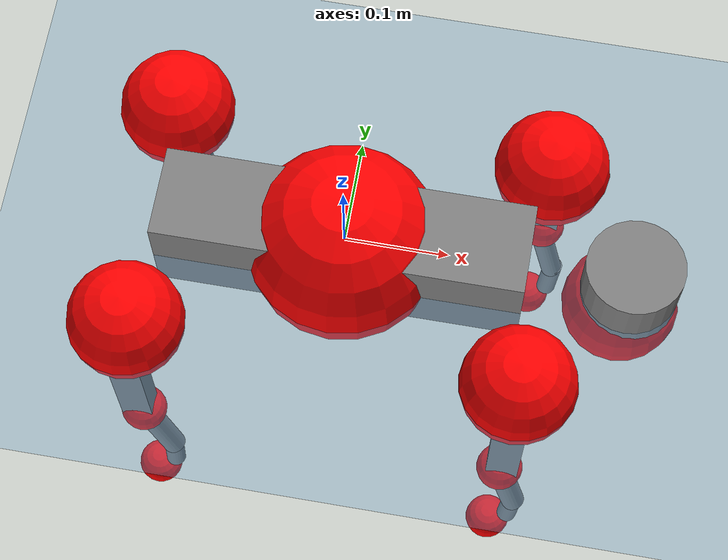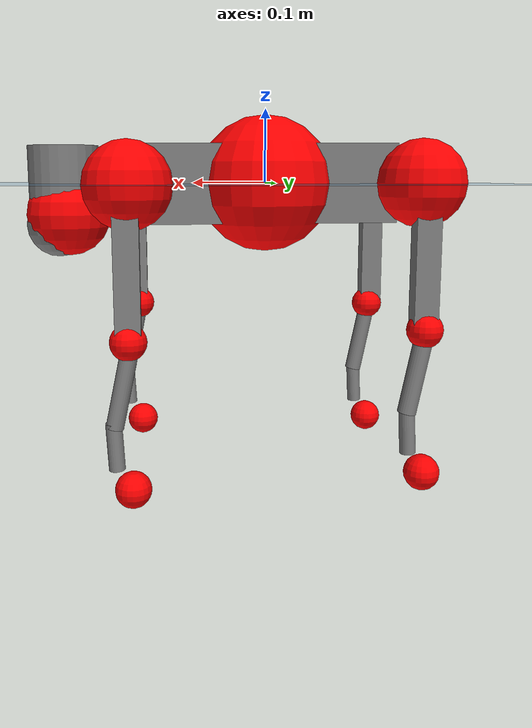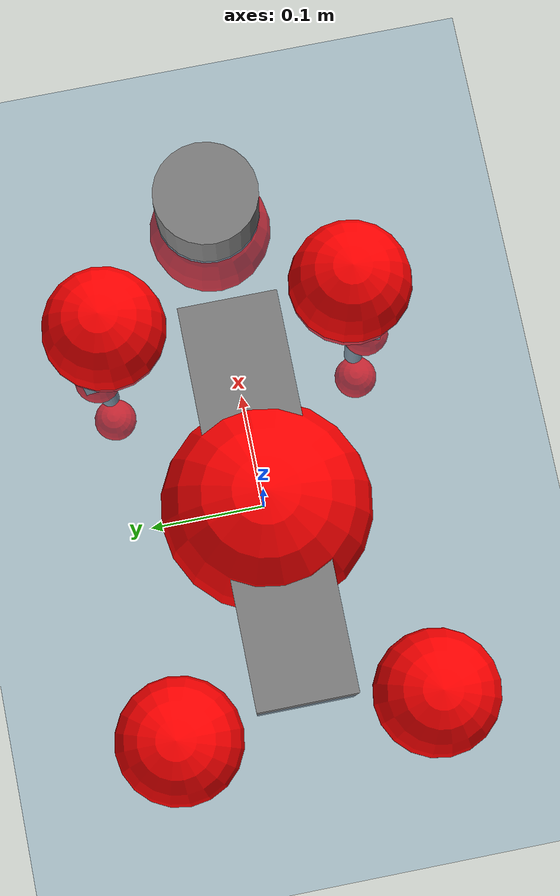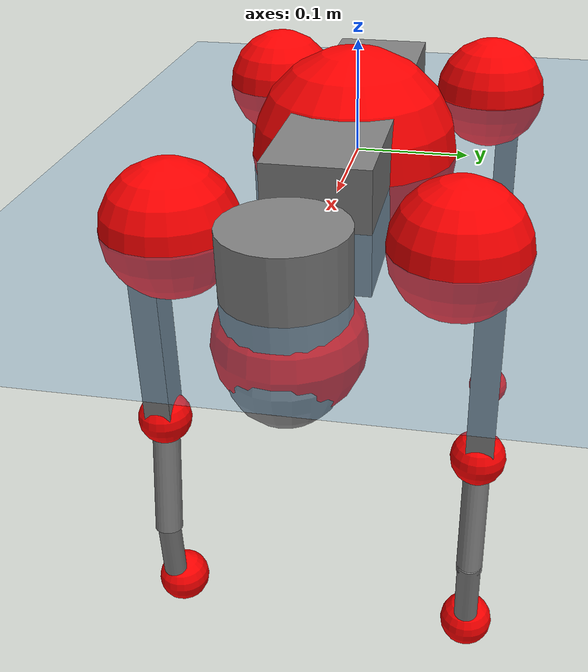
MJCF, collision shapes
<mujoco model="go2">
  <compiler angle="radian" assetdir="assets" balanceinertia="true" inertiafromgeom="false"/>

  <option timestep="0.005" density="1.2" viscosity="2e-05"/>

  <size nkey="1"/>

  <visual>
    <quality shadowsize="8192"/>
    <map shadowclip="0.5"/>
  </visual>

  <default>
    <default class="/">
      <geom contype="0" conaffinity="0" group="1" solref="-1000 -80"/>
      <site size="0.01 0.005 0.005" group="5"/>
      <general forcelimited="true" biastype="affine" gainprm="20" biasprm="0 -20 -0.5"/>
      <default class="go2">
        <joint armature="0.01" damping="0.01" frictionloss="0.2"/>
        <geom condim="1" margin="0.001"/>
        <default class="visual">
          <geom type="mesh" group="2"/>
        </default>
        <default class="collision">
          <geom group="3"/>
          <default class="foot">
            <geom size="0.022 0 0" condim="6" priority="1" friction="0.8 0.02 0.01" solimp="0.015 1 0.022"/>
          </default>
        </default>
        <default class="reward_collision_sphere">
          <geom group="5" rgba="1 0 0 1"/>
        </default>
      </default>
    </default>
  </default>

  <asset>
    <texture type="skybox" colorspace="auto" name="//unnamed_texture_0" builtin="gradient" rgb1="0.95 0.95 0.95" rgb2="0.95 0.95 0.95" width="100" height="600"/>
    <texture type="2d" colorspace="auto" name="texplane" builtin="checker" rgb1="0.345 0.575 0.748" rgb2="0.345 0.575 0.748" markrgb="1 1 1" width="512" height="512"/>
    <material name="MatPlane" class="/" texture="texplane" texuniform="true" texrepeat="2 2" specular="0.9"/>
    <material name="metal" class="/" rgba="0.9 0.95 0.95 1"/>
    <material name="black" class="/" rgba="0 0 0 1"/>
    <material name="white" class="/"/>
    <material name="gray" class="/" rgba="0.671705 0.692426 0.77427 1"/>
    <mesh name="base_0" class="/" file="base_0.obj"/>
    <mesh name="base_1" class="/" file="base_1.obj"/>
    <mesh name="base_2" class="/" file="base_2.obj"/>
    <mesh name="base_3" class="/" file="base_3.obj"/>
    <mesh name="base_4" class="/" file="base_4.obj"/>
    <mesh name="hip_0" class="/" file="hip_0.obj"/>
    <mesh name="hip_1" class="/" file="hip_1.obj"/>
    <mesh name="thigh_0" class="/" file="thigh_0.obj"/>
    <mesh name="thigh_1" class="/" file="thigh_1.obj"/>
    <mesh name="thigh_mirror_0" class="/" file="thigh_mirror_0.obj"/>
    <mesh name="thigh_mirror_1" class="/" file="thigh_mirror_1.obj"/>
    <mesh name="calf_0" class="/" file="calf_0.obj"/>
    <mesh name="calf_1" class="/" file="calf_1.obj"/>
    <mesh name="calf_mirror_0" class="/" file="calf_mirror_0.obj"/>
    <mesh name="calf_mirror_1" class="/" file="calf_mirror_1.obj"/>
    <mesh name="foot" class="/" file="foot.obj"/>
  </asset>

  <worldbody>
    <geom name="floor" class="/" size="100 100 0.125" type="plane" group="0" material="MatPlane"/>
    <light name="toplight_shadow" class="/" pos="0 0 5" dir="0.0990148 0.0990148 -0.990148" type="directional" ambient="0.04 0.04 0.04" diffuse="0.55 0.55 0.55" specular="0.12 0.12 0.12"/>
    <light name="toplight_fill" class="/" pos="0 0 5" dir="0.0990148 0.0990148 -0.990148" type="directional" castshadow="false" ambient="0.04 0.04 0.04" diffuse="0.3 0.3 0.3" specular="0.08 0.08 0.08"/>
    <body name="trunk" childclass="go2" pos="-0.000309613 -0.00281909 -0.000871543" quat="0.999999 -5.65043e-05 0.00135826 0.000380551">
      <inertial pos="0.017644 -0.00159431 -0.00206176" quat="0.00578742 0.712673 0.00926234 0.701411" mass="5.76025" diaginertia="0.0846223 0.0753863 0.0142583"/>
      <joint name="//unnamed_joint_0" type="free" armature="0" damping="0" frictionloss="0"/>
      <geom name="//unnamed_geom_1" class="visual" material="black" mesh="base_0"/>
      <geom name="//unnamed_geom_2" class="visual" material="black" mesh="base_1"/>
      <geom name="//unnamed_geom_3" class="visual" material="black" mesh="base_2"/>
      <geom name="//unnamed_geom_4" class="visual" material="white" mesh="base_3"/>
      <geom name="//unnamed_geom_5" class="visual" material="gray" mesh="base_4"/>
      <geom name="trunk_1" class="collision" size="0.176299 0.0438171 0.053424" type="box"/>
      <geom name="trunk_2" class="collision" size="0.0468632 0.0421769" pos="0.274268 0 0.00895997" type="cylinder"/>
      <geom name="trunk_3" class="collision" size="0.0440514" pos="0.281966 0 -0.0537598"/>
      <geom name="//unnamed_geom_9" class="reward_collision_sphere" size="0.0937264"/>
      <geom name="//unnamed_geom_10" class="reward_collision_sphere" size="0.0562358" pos="0.269456 0 -0.0403199"/>
      <site name="imu" pos="-0.0193143 -0.00389656 0.0340851" size="0.00937264"/>
      <camera name="track" pos="0 -1.9069 0" quat="0.707107 0.707107 0 0" mode="trackcom"/>
      <camera name="ego_camera" pos="0.300251 0 0.0403199" quat="-0.5 -0.5 0.5 0.5"/>
      <body name="FL_hip" pos="0.18501 0.0446834 -0.000415173" quat="1 0.0001175 -0.000157194 -0.000167453">
        <inertial pos="-0.00560689 -0.000624982 -0.00123091" quat="0.492876 0.500408 0.506472 0.500152" mass="0.555975" diaginertia="0.000735133 0.000455579 0.000278343"/>
        <joint name="FL_hip_joint" pos="0 0 0" axis="0.999897 0.0130953 -0.00594843" stiffness="0.00999685" range="-1.09906 1.06161" armature="0.00961051" damping="0.00109561" frictionloss="0.1827"/>
        <geom name="//unnamed_geom_11" class="visual" material="metal" mesh="hip_0"/>
        <geom name="//unnamed_geom_12" class="visual" material="gray" mesh="hip_1"/>
        <geom name="//unnamed_geom_13" class="collision" size="0.0431141 0.0187453" pos="0 0.0762761 0" quat="0.707107 0.707107 0 0" type="cylinder"/>
        <geom name="//unnamed_geom_14" class="reward_collision_sphere" size="0.0562358" pos="0 0.0667416 0"/>
        <body name="FL_thigh" pos="0.00203445 0.0933304 -0.000363149" quat="1 -0.000572393 -0.000102499 -0.000496761">
          <inertial pos="-0.00325078 -0.0199078 -0.0281286" quat="0.830086 0.0863425 -0.0118094 0.550784" mass="0.983968" diaginertia="0.00479479 0.00473181 0.000509577"/>
          <joint name="FL_thigh_joint" pos="0 0 0" axis="0.0160704 0.999871 0.000767718" stiffness="0.0142738" range="-1.62657 3.4478" armature="0.0100514" damping="0.00150569" frictionloss="0.163243"/>
          <geom name="//unnamed_geom_15" class="visual" material="metal" mesh="thigh_0"/>
          <geom name="//unnamed_geom_16" class="visual" material="gray" mesh="thigh_1"/>
          <geom name="//unnamed_geom_17" class="collision" size="0.0998186 0.0114815 0.0159335" pos="0 0 -0.0954237" quat="0.707107 0 0.707107 0" type="box"/>
          <body name="FL_calf" pos="0.000291203 -0.00138461 -0.190464" quat="1 0.000251928 0.000371569 0.000113342">
            <inertial pos="0.00369188 -0.00324279 -0.128956" quat="0.706338 0.00293732 -0.00687816 0.707835" mass="0.194708" diaginertia="0.00118282 0.00114262 3.00179e-05"/>
            <joint name="FL_calf_joint" pos="0 0 0" axis="0.000945233 0.999952 0.00977882" stiffness="0.0140818" range="-2.6965 -0.783706" armature="0.00807454" damping="0" frictionloss="0.197529"/>
            <geom name="//unnamed_geom_18" class="visual" material="gray" mesh="calf_0"/>
            <geom name="//unnamed_geom_19" class="visual" material="black" mesh="calf_1"/>
            <geom name="FL_calf0" class="collision" size="0.0112472 0.0562358" pos="0.00769874 0 -0.0537598" quat="0.994493 0 -0.104807 0" type="cylinder"/>
            <geom name="//unnamed_geom_21" class="collision" size="0.0103099 0.0304611" pos="0.0192469 0 -0.132608" quat="0.999688 0 0.0249974 0" type="cylinder"/>
            <geom name="//unnamed_geom_22" class="visual" pos="0 0 -0.190847" quat="1 0 0 0" material="black" mesh="foot"/>
            <geom name="FL_foot" class="foot" size="0.0157925" pos="-0.00192469 0 -0.190847"/>
            <geom name="//unnamed_geom_24" class="reward_collision_sphere" size="0.0234316"/>
            <geom name="//unnamed_geom_25" class="reward_collision_sphere" size="0.0234316" pos="-0.00192469 0 -0.190847"/>
            <site name="FL_foot" class="foot" pos="-0.00192469 0 -0.190847" size="0.00937264"/>
          </body>
        </body>
      </body>
      <body name="FR_hip" pos="0.184681 -0.0463001 -0.00144201" quat="1 0.000524973 6.96186e-05 -9.15775e-05">
        <inertial pos="-0.00391271 -0.000244832 -0.00136578" quat="0.498818 0.514346 0.493361 0.493178" mass="0.548742" diaginertia="0.000705325 0.00047009 0.000282138"/>
        <joint name="FR_hip_joint" pos="0 0 0" axis="0.999913 0.0111499 -0.00698878" range="-1.06914 1.10114" armature="0.0084068" damping="0.00628408" frictionloss="0.193096"/>
        <geom name="//unnamed_geom_26" class="visual" pos="0 5.00516e-10 2.14682e-08" quat="4.63268e-05 1 0 0" material="metal" mesh="hip_0"/>
        <geom name="//unnamed_geom_27" class="visual" pos="0 8.11396e-10 -5.3099e-08" quat="4.63268e-05 1 0 0" material="gray" mesh="hip_1"/>
        <geom name="//unnamed_geom_28" class="collision" size="0.0431141 0.0187453" pos="0 -0.0762761 0" quat="0.707107 0.707107 0 0" type="cylinder"/>
        <geom name="//unnamed_geom_29" class="reward_collision_sphere" size="0.0562358" pos="0 -0.0667416 0"/>
        <body name="FR_thigh" pos="-0.0002799 -0.0907782 0.00142687" quat="1 -0.000213339 -7.56835e-05 -0.000101441">
          <inertial pos="-0.000930713 0.0186591 -0.0272418" quat="0.550629 -0.0192762 0.0912314 0.829526" mass="0.958503" diaginertia="0.0047481 0.00460711 0.000507988"/>
          <joint name="FR_thigh_joint" pos="0 0 0" axis="-0.000297161 -0.999999 -0.00113209" stiffness="0.0045895" range="-3.48441 1.5896" armature="0.00837751" damping="0.0237972" frictionloss="0.161898"/>
          <geom name="//unnamed_geom_30" class="visual" material="metal" mesh="thigh_mirror_0"/>
          <geom name="//unnamed_geom_31" class="visual" material="gray" mesh="thigh_mirror_1"/>
          <geom name="//unnamed_geom_32" class="collision" size="0.0998186 0.0114815 0.0159335" pos="0 0 -0.0954237" quat="0.707107 0 0.707107 0" type="box"/>
          <body name="FR_calf" pos="-0.00230243 -0.000164747 -0.187615" quat="1 8.25705e-05 -1.3122e-06 3.30761e-05">
            <inertial pos="0.00333444 0.0034714 -0.126374" quat="0.706541 0.00364649 0.0015666 0.707661" mass="0.202307" diaginertia="0.0012275 0.0012161 3.01939e-05"/>
            <joint name="FR_calf_joint" pos="0 0 0" axis="0.00401552 -0.999984 0.00389423" range="0.853359 2.73016" armature="0.00974558" damping="0" frictionloss="0.173985"/>
            <geom name="//unnamed_geom_33" class="visual" material="gray" mesh="calf_mirror_0"/>
            <geom name="//unnamed_geom_34" class="visual" material="black" mesh="calf_mirror_1"/>
            <geom name="FR_calf0" class="collision" size="0.0121844 0.0562358" pos="0.00962343 0 -0.0537598" quat="0.995004 0 -0.0998334 0" type="cylinder"/>
            <geom name="//unnamed_geom_36" class="collision" size="0.0103099 0.0304611" pos="0.0192469 0 -0.132608" quat="0.999688 0 0.0249974 0" type="cylinder"/>
            <geom name="//unnamed_geom_37" class="visual" pos="0 0 -0.190847" quat="1 0 0 0" material="black" mesh="foot"/>
            <geom name="FR_foot" class="foot" size="0.020102" pos="-0.00192469 0 -0.190847"/>
            <geom name="//unnamed_geom_39" class="reward_collision_sphere" size="0.0234316"/>
            <geom name="//unnamed_geom_40" class="reward_collision_sphere" size="0.0234316" pos="-0.00192469 0 -0.190847"/>
            <site name="FR_foot" class="foot" pos="-0.00192469 0 -0.190847" size="0.00937264"/>
          </body>
        </body>
      </body>
      <body name="RL_hip" pos="-0.185351 0.0465467 0.000986038" quat="1 -1.24275e-07 -0.000397649 -0.000209572">
        <inertial pos="0.00491101 0.002589 0.00287021" quat="0.505428 0.498231 0.497042 0.499257" mass="0.538082" diaginertia="0.000718565 0.00044685 0.000280414"/>
        <joint name="RL_hip_joint" pos="0 0 0" axis="-0.99992 0.00895318 0.00895666" stiffness="0.0098918" range="-0.998307 1.01411" armature="0.00944403" damping="0.0116585" frictionloss="0.213546"/>
        <geom name="//unnamed_geom_41" class="visual" pos="-5.77975e-10 0 -1.13296e-07" quat="4.63268e-05 0 1 0" material="metal" mesh="hip_0"/>
        <geom name="//unnamed_geom_42" class="visual" pos="-9.36967e-10 0 -1.00478e-07" quat="4.63268e-05 0 1 0" material="gray" mesh="hip_1"/>
        <geom name="//unnamed_geom_43" class="collision" size="0.0431141 0.0187453" pos="0 0.0762761 0" quat="0.707107 0.707107 0 0" type="cylinder"/>
        <geom name="//unnamed_geom_44" class="reward_collision_sphere" size="0.0562358" pos="0 0.0667416 0"/>
        <body name="RL_thigh" pos="-0.000446975 0.0882935 0.00269242" quat="0.999999 -9.84869e-05 0.00095136 -0.00052561">
          <inertial pos="-0.00297042 -0.0202076 -0.0277778" quat="0.822032 0.086432 -0.0161052 0.562613" mass="0.931461" diaginertia="0.00477028 0.0047677 0.000524237"/>
          <joint name="RL_thigh_joint" pos="0 0 0" axis="0.00311225 0.999987 -0.00409263" stiffness="0.00200523" range="-0.502552 4.54743" armature="0.010678" damping="0.0234245" frictionloss="0.163405"/>
          <geom name="//unnamed_geom_45" class="visual" material="metal" mesh="thigh_0"/>
          <geom name="//unnamed_geom_46" class="visual" material="gray" mesh="thigh_1"/>
          <geom name="//unnamed_geom_47" class="collision" size="0.0998186 0.0114815 0.0159335" pos="0 0 -0.0954237" quat="0.707107 0 0.707107 0" type="box"/>
          <body name="RL_calf" pos="-0.00225284 2.94257e-05 -0.188699" quat="0.999999 0.00125938 -0.000159607 -0.000381279">
            <inertial pos="0.00589599 0.00208211 -0.125613" quat="0.711141 -0.00205278 -0.0069718 0.703012" mass="0.194892" diaginertia="0.00117553 0.00110235 2.93554e-05"/>
            <joint name="RL_calf_joint" pos="0 0 0" axis="-0.00670681 0.999971 0.00371284" stiffness="0.00893303" range="-2.69041 -0.824539" armature="0.0100208" damping="0.0140534" frictionloss="0.161484"/>
            <geom name="//unnamed_geom_48" class="visual" material="gray" mesh="calf_0"/>
            <geom name="//unnamed_geom_49" class="visual" material="black" mesh="calf_1"/>
            <geom name="RL_calf0" class="collision" size="0.0121844 0.0562358" pos="0.00962343 0 -0.0537598" quat="0.995004 0 -0.0998334 0" type="cylinder"/>
            <geom name="//unnamed_geom_51" class="collision" size="0.0103099 0.0304611" pos="0.0192469 0 -0.132608" quat="0.999688 0 0.0249974 0" type="cylinder"/>
            <geom name="//unnamed_geom_52" class="visual" pos="0 0 -0.190847" quat="1 0 0 0" material="black" mesh="foot"/>
            <geom name="RL_foot" class="foot" size="0.0173988" pos="-0.00192469 0 -0.190847"/>
            <geom name="//unnamed_geom_54" class="reward_collision_sphere" size="0.0234316"/>
            <geom name="//unnamed_geom_55" class="reward_collision_sphere" size="0.0234316" pos="-0.00192469 0 -0.190847"/>
            <site name="RL_foot" class="foot" pos="-0.00192469 0 -0.190847" size="0.00937264"/>
          </body>
        </body>
      </body>
      <body name="RR_hip" pos="-0.187817 -0.0457698 -0.000912109" quat="1 0.00048643 1.06743e-05 0.000129334">
        <inertial pos="0.00427026 -0.00253645 0.000853259" quat="0.498303 0.49685 0.497284 0.507487" mass="0.544091" diaginertia="0.000710164 0.000460796 0.000272568"/>
        <joint name="RR_hip_joint" pos="0 0 0" axis="-0.999995 -0.00304456 -0.00111974" stiffness="0.00983964" range="-1.03777 1.10372" armature="0.0104097" damping="0.00588341" frictionloss="0.212957"/>
        <geom name="//unnamed_geom_56" class="visual" pos="5.77667e-10 5.00516e-10 -1.34765e-07" quat="2.14617e-09 4.63268e-05 4.63268e-05 -1" material="metal" mesh="hip_0"/>
        <geom name="//unnamed_geom_57" class="visual" pos="9.37728e-10 8.11396e-10 -4.73789e-08" quat="2.14617e-09 4.63268e-05 4.63268e-05 -1" material="gray" mesh="hip_1"/>
        <geom name="//unnamed_geom_58" class="collision" size="0.0431141 0.0187453" pos="0 -0.0762761 0" quat="0.707107 0.707107 0 0" type="cylinder"/>
        <geom name="//unnamed_geom_59" class="reward_collision_sphere" size="0.0562358" pos="0 -0.0667416 0"/>
        <body name="RR_thigh" pos="-0.00257915 -0.0888678 -0.00332314" quat="1 2.29386e-06 -0.000121222 -0.000684472">
          <inertial pos="-0.00311043 0.0185748 -0.029096" quat="0.552521 -0.0239399 0.0837777 0.828932" mass="0.95745" diaginertia="0.00497412 0.00456281 0.000489568"/>
          <joint name="RR_thigh_joint" pos="0 0 0" axis="-0.00101663 -0.999986 0.00526771" stiffness="0.0107107" range="-4.55203 0.55044" armature="0.00858112" damping="0.0240531" frictionloss="0.196189"/>
          <geom name="//unnamed_geom_60" class="visual" material="metal" mesh="thigh_mirror_0"/>
          <geom name="//unnamed_geom_61" class="visual" material="gray" mesh="thigh_mirror_1"/>
          <geom name="//unnamed_geom_62" class="collision" size="0.0998186 0.0114815 0.0159335" pos="0 0 -0.0954237" quat="0.707107 0 0.707107 0" type="box"/>
          <body name="RR_calf" pos="0.00360372 -0.000215531 -0.190677" quat="1 0.000434043 -2.99817e-05 7.77277e-05">
            <inertial pos="0.00334071 -0.000454127 -0.12676" quat="0.704107 -0.00327496 0.00099623 0.710086" mass="0.205014" diaginertia="0.00123521 0.00118189 3.09852e-05"/>
            <joint name="RR_calf_joint" pos="0 0 0" axis="-0.00490107 -0.999955 -0.00807299" range="0.883051 2.77003" armature="0.0097892" damping="0.0151243" frictionloss="0.211208"/>
            <geom name="//unnamed_geom_63" class="visual" material="gray" mesh="calf_mirror_0"/>
            <geom name="//unnamed_geom_64" class="visual" material="black" mesh="calf_mirror_1"/>
            <geom name="RR_calf0" class="collision" size="0.0121844 0.0562358" pos="0.00962343 0 -0.0537598" quat="0.995004 0 -0.0998334 0" type="cylinder"/>
            <geom name="//unnamed_geom_66" class="collision" size="0.0103099 0.0304611" pos="0.0192469 0 -0.132608" quat="0.999688 0 0.0249974 0" type="cylinder"/>
            <geom name="//unnamed_geom_67" class="visual" pos="0 0 -0.190847" quat="1 0 0 0" material="black" mesh="foot"/>
            <geom name="RR_foot" class="foot" size="0.0218218" pos="-0.00192469 0 -0.190847"/>
            <geom name="//unnamed_geom_69" class="reward_collision_sphere" size="0.0234316"/>
            <geom name="//unnamed_geom_70" class="reward_collision_sphere" size="0.0234316" pos="-0.00192469 0 -0.190847"/>
            <site name="RR_foot" class="foot" pos="-0.00192469 0 -0.190847" size="0.00937264"/>
          </body>
        </body>
      </body>
    </body>
  </worldbody>

  <contact>
    <pair class="/" geom1="floor" geom2="FL_foot" name="//unnamed_contact_0"/>
    <pair class="/" geom1="floor" geom2="FR_foot" name="//unnamed_contact_1"/>
    <pair class="/" geom1="floor" geom2="RL_foot" name="//unnamed_contact_2"/>
    <pair class="/" geom1="floor" geom2="RR_foot" name="//unnamed_contact_3"/>
  </contact>

  <actuator>
    <general name="FL_hip" class="/" joint="FL_hip_joint" forcerange="-23.9798 23.9798" gainprm="18.7004" biasprm="0 -18.7004 -0.461435"/>
    <general name="FL_thigh" class="/" joint="FL_thigh_joint" forcerange="-21.7189 21.7189" gainprm="18.7004" biasprm="0 -18.7004 -0.461435"/>
    <general name="FL_calf" class="/" joint="FL_calf_joint" forcerange="-41.3727 41.3727" gainprm="18.7004" biasprm="0 -18.7004 -0.461435"/>
    <general name="FR_hip" class="/" joint="FR_hip_joint" forcerange="-20.1986 20.1986" gainprm="18.7004" biasprm="0 -18.7004 -0.461435"/>
    <general name="FR_thigh" class="/" joint="FR_thigh_joint" forcerange="-22.512 22.512" gainprm="18.7004" biasprm="0 -18.7004 -0.461435"/>
    <general name="FR_calf" class="/" joint="FR_calf_joint" forcerange="-37.7864 37.7864" gainprm="18.7004" biasprm="0 -18.7004 -0.461435"/>
    <general name="RL_hip" class="/" joint="RL_hip_joint" forcerange="-21.3047 21.3047" gainprm="18.7004" biasprm="0 -18.7004 -0.461435"/>
    <general name="RL_thigh" class="/" joint="RL_thigh_joint" forcerange="-22.2281 22.2281" gainprm="18.7004" biasprm="0 -18.7004 -0.461435"/>
    <general name="RL_calf" class="/" joint="RL_calf_joint" forcerange="-43.9852 43.9852" gainprm="18.7004" biasprm="0 -18.7004 -0.461435"/>
    <general name="RR_hip" class="/" joint="RR_hip_joint" forcerange="-20.3407 20.3407" gainprm="18.7004" biasprm="0 -18.7004 -0.461435"/>
    <general name="RR_thigh" class="/" joint="RR_thigh_joint" forcerange="-23.3979 23.3979" gainprm="18.7004" biasprm="0 -18.7004 -0.461435"/>
    <general name="RR_calf" class="/" joint="RR_calf_joint" forcerange="-46.1343 46.1343" gainprm="18.7004" biasprm="0 -18.7004 -0.461435"/>
  </actuator>

  <sensor>
    <gyro site="imu" name="imu_angular_velocity"/>
    <velocimeter site="imu" name="imu_linear_velocity"/>
    <framelinvel objtype="site" objname="FL_foot" name="FL_foot_global_linear_velocity"/>
    <framelinvel objtype="site" objname="FR_foot" name="FR_foot_global_linear_velocity"/>
    <framelinvel objtype="site" objname="RL_foot" name="RL_foot_global_linear_velocity"/>
    <framelinvel objtype="site" objname="RR_foot" name="RR_foot_global_linear_velocity"/>
  </sensor>

  <keyframe>
    <key name="home" qpos="0 0 0.325 1 0 0 0 0.1 0.8 -1.5 -0.1 -0.8 1.5 -0.1 0.8 -1.5 0.1 -0.8 1.5"/>
  </keyframe>
</mujoco>
